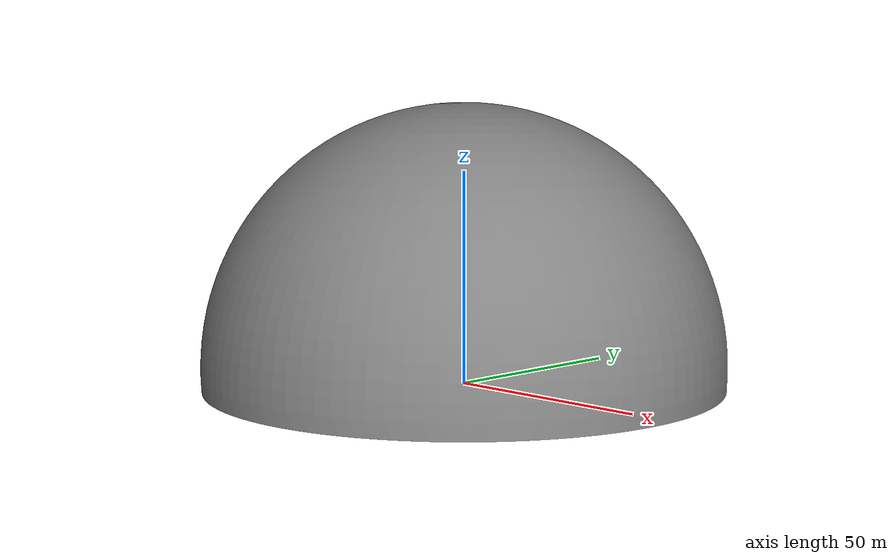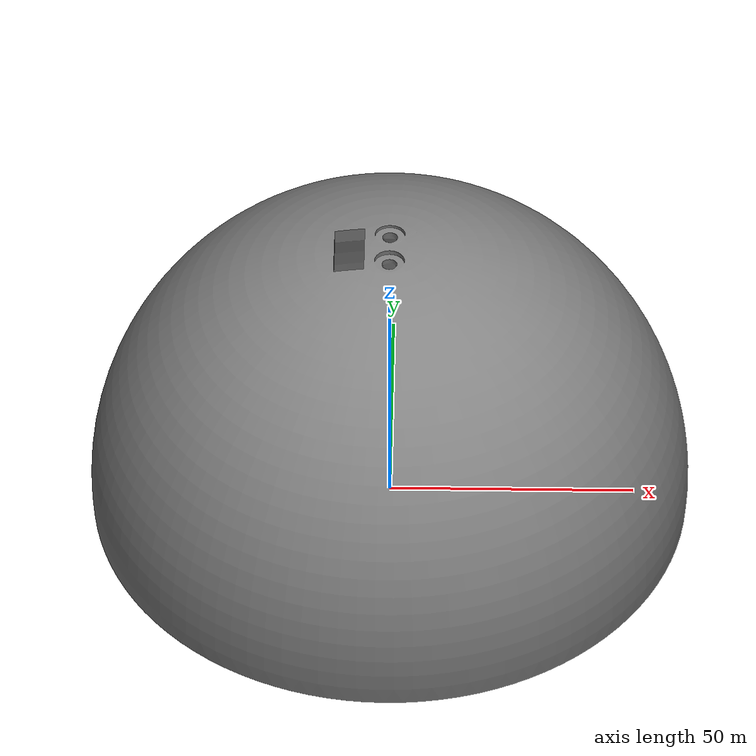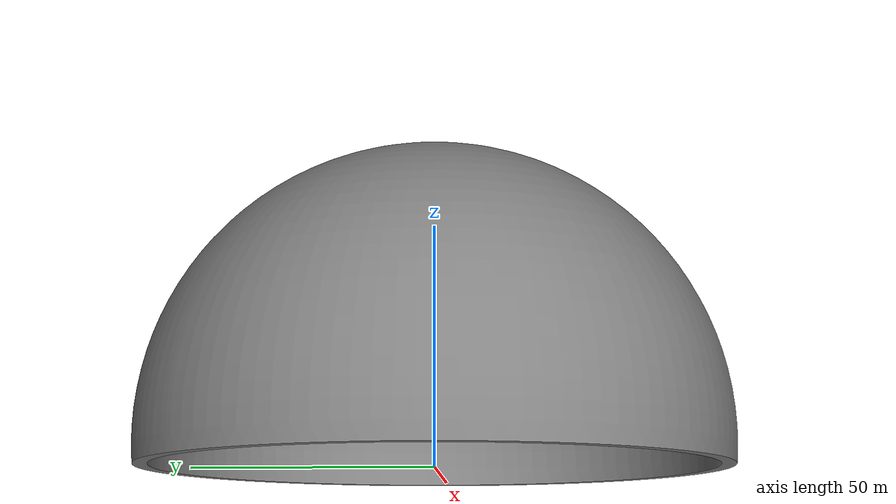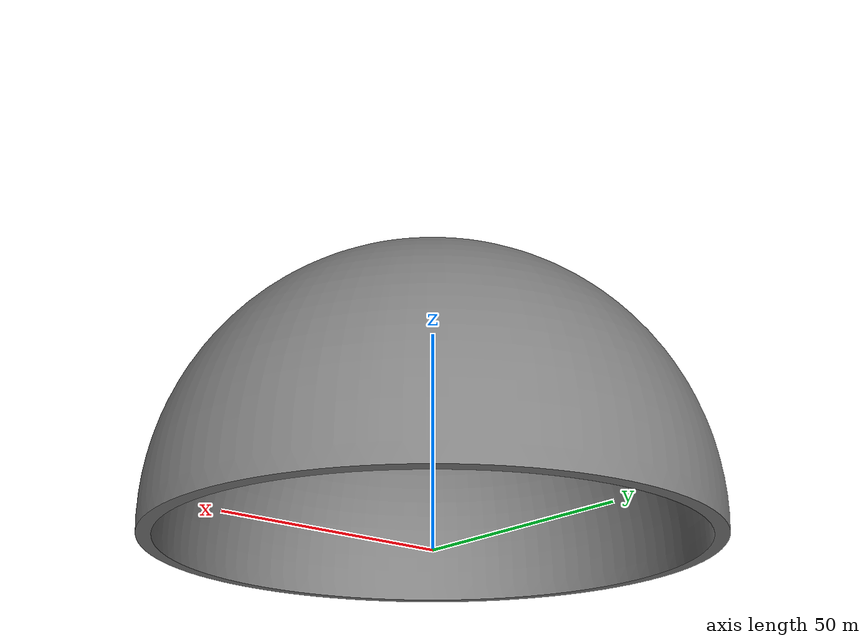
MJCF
<mujoco model="FabConvert.com_back_cover_sphere">
  <default>
    <default class="visual">
      <geom group="2" type="mesh" contype="0" conaffinity="0"/>
    </default>
    <default class="collision">
      <geom group="3" type="mesh"/>
    </default>
  </default>
  <asset>
    <mesh file="FabConvert.com_back_cover_sphere.obj"/>
  </asset>
  <worldbody>
    <body name="FabConvert.com_back_cover_sphere">
      <geom mesh="FabConvert.com_back_cover_sphere" class="visual"/>
      <geom mesh="FabConvert.com_back_cover_sphere" class="collision"/>
    </body>
  </worldbody>
</mujoco>
